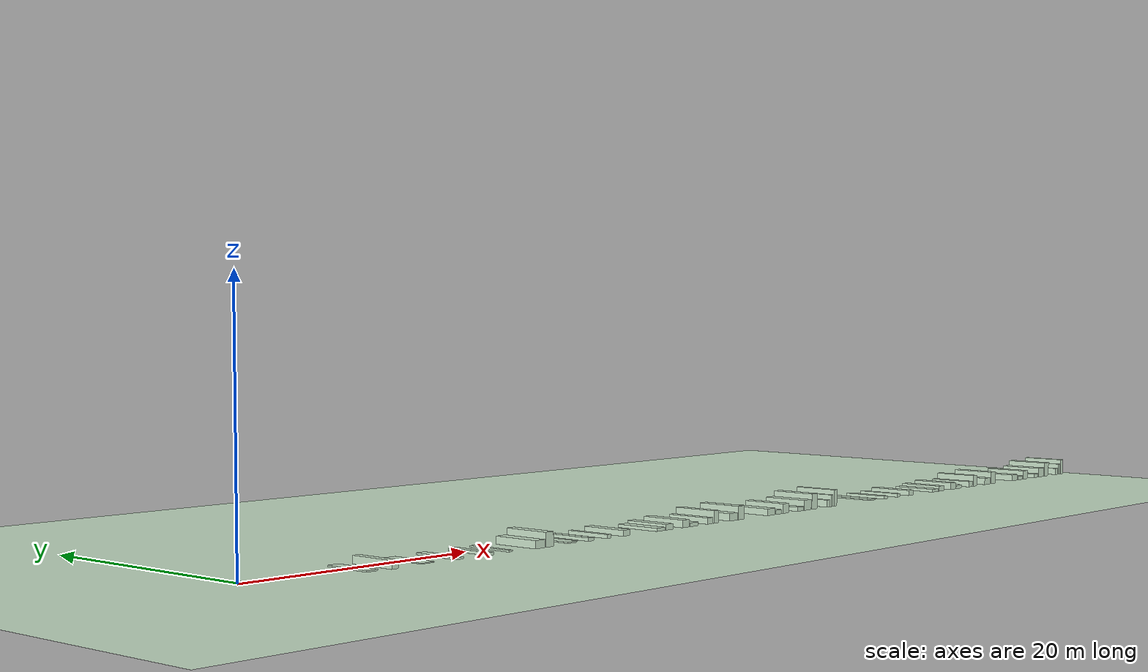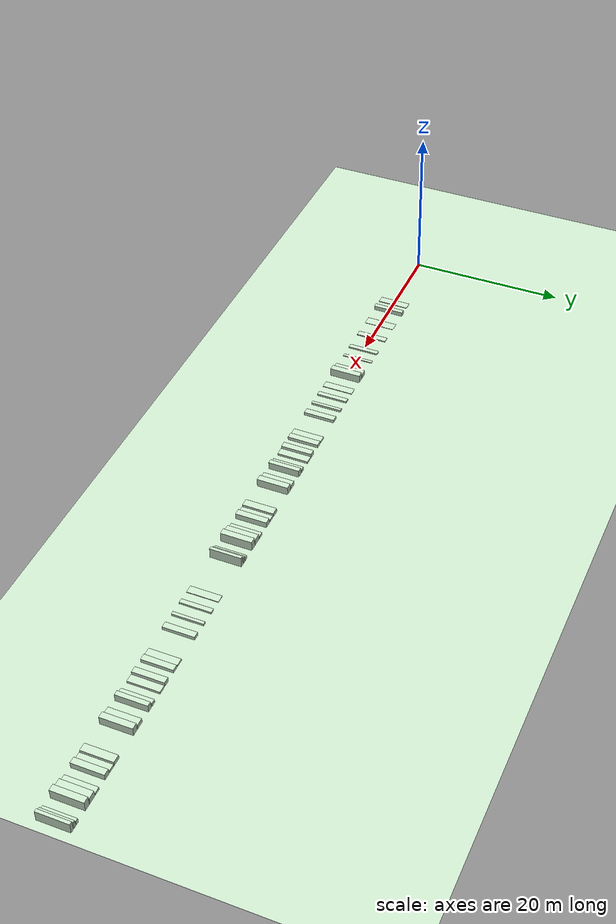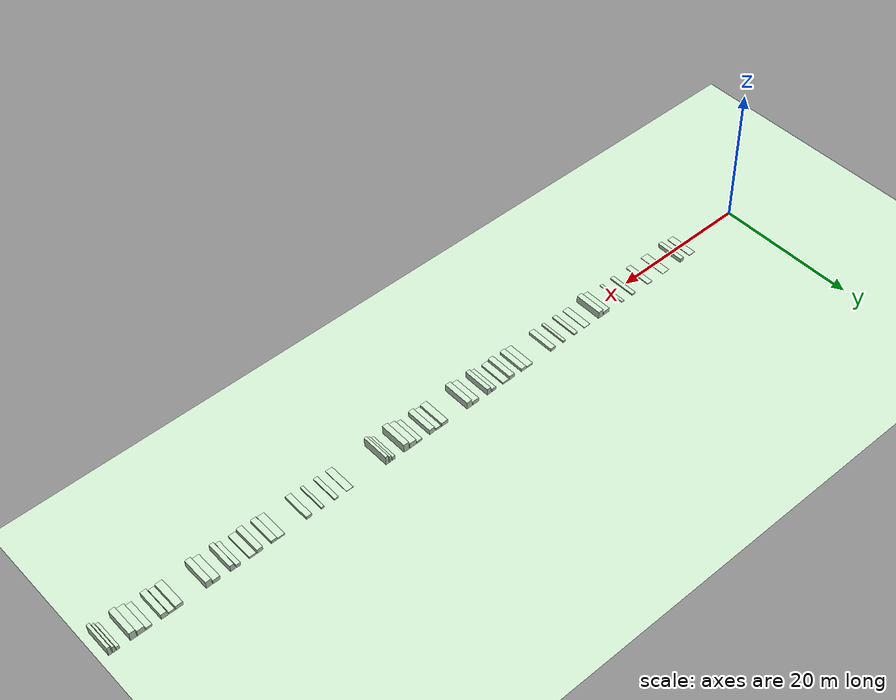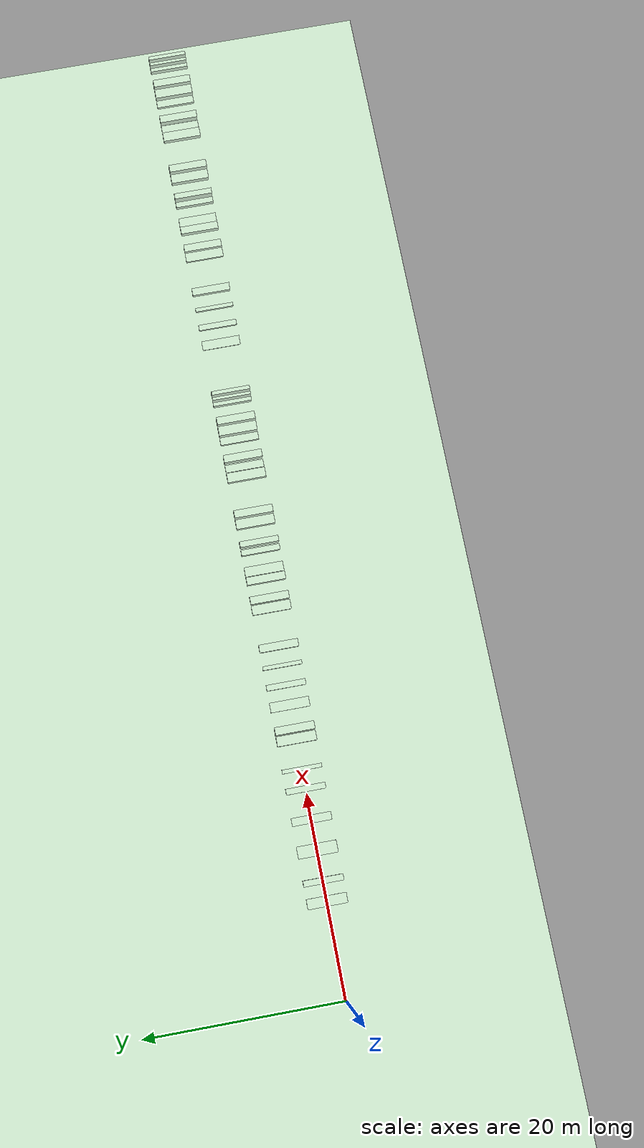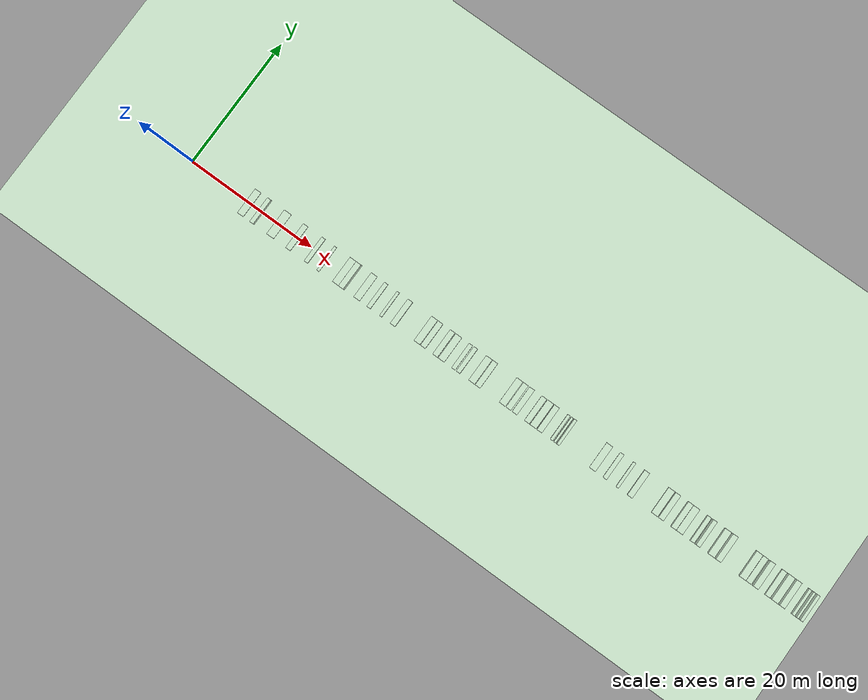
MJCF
<!--
Walker2D model for `Walker2d-v5`, based on openai/gym/Walker2d
modified by @kallinteris-Andreas
  - To not require `coordinate="global"`
  - Set feet friction to 1.9
-->
<mujoco model="walker2d">
  <compiler angle="degree" inertiafromgeom="true"/>
  <default>
    <joint armature="0.01" damping=".1" limited="true"/>
    <geom conaffinity="0" condim="3" contype="1" density="1000" friction=".7 .1 .1" rgba="0.8 0.6 .4 1"/>
  </default>
  <option integrator="RK4" timestep="0.002"/>
  <worldbody>
    <light cutoff="100" diffuse="1 1 1" dir="-0 0 -1.3" directional="true" exponent="1" pos="0 0 1.3" specular=".1 .1 .1"/>

    <geom conaffinity="1" condim="3" name="floor" pos="0 0 0" rgba="0.8 0.9 0.8 1" size="102 40 40" type="plane" material="MatPlane"/>
    <!-- Terrain Editor bumps: x-sorted, non-overlapping, touching allowed.
         size = (forward half-length, lateral half-width, exposed height); pos z=0. -->
    <geom conaffinity="1" condim="3" name="bump1" pos="9.550 0 0" size="0.500 2 0.050" type="box" friction="0.9 0.1 0.1" rgba="0.8 0.9 0.8 1"/>
    <geom conaffinity="1" condim="3" name="bump2" pos="11.550 0 0" size="0.300 2 0.500" type="box" friction="0.9 0.1 0.1" rgba="0.8 0.9 0.8 1"/>
    <geom conaffinity="1" condim="3" name="bump3" pos="14.550 0 0" size="0.600 2 0.030" type="box" friction="0.9 0.1 0.1" rgba="0.8 0.9 0.8 1"/>
    <geom conaffinity="1" condim="3" name="bump4" pos="17.550 0 0" size="0.400 2 0.070" type="box" friction="0.9 0.1 0.1" rgba="0.8 0.9 0.8 1"/>
    <geom conaffinity="1" condim="3" name="bump5" pos="20.550 0 0" size="0.300 2 0.120" type="box" friction="0.9 0.1 0.1" rgba="0.8 0.9 0.8 1"/>
    <geom conaffinity="1" condim="3" name="bump6" pos="22.550 0 0" size="0.200 2 0.060" type="box" friction="0.9 0.1 0.1" rgba="0.8 0.9 0.8 1"/>
    <geom conaffinity="1" condim="3" name="bump7" pos="25.550 0 0" size="0.500 2 0.500" type="box" friction="0.9 0.1 0.1" rgba="0.8 0.9 0.8 1"/>
    <geom conaffinity="1" condim="3" name="bump8" pos="26.550 0 0" size="0.400 2 1.000" type="box" friction="0.9 0.1 0.1" rgba="0.8 0.9 0.8 1"/>
    <geom conaffinity="1" condim="3" name="bump9" pos="29.000 0 0" size="0.500 2 0.050" type="box" friction="0.9 0.1 0.1" rgba="0.8 0.9 0.8 1"/>
    <geom conaffinity="1" condim="3" name="bump10" pos="31.000 0 0" size="0.300 2 0.150" type="box" friction="0.9 0.1 0.1" rgba="0.8 0.9 0.8 1"/>
    <geom conaffinity="1" condim="3" name="bump11" pos="33.000 0 0" size="0.200 2 0.200" type="box" friction="0.9 0.1 0.1" rgba="0.8 0.9 0.8 1"/>
    <geom conaffinity="1" condim="3" name="bump12" pos="35.000 0 0" size="0.400 2 0.350" type="box" friction="0.9 0.1 0.1" rgba="0.8 0.9 0.8 1"/>
    <geom conaffinity="1" condim="3" name="bump13" pos="39.000 0 0" size="0.500 2 0.150" type="box" friction="0.9 0.1 0.1" rgba="0.8 0.9 0.8 1"/>
    <geom conaffinity="1" condim="3" name="bump14" pos="40.000 0 0" size="0.400 2 0.350" type="box" friction="0.9 0.1 0.1" rgba="0.8 0.9 0.8 1"/>
    <geom conaffinity="1" condim="3" name="bump15" pos="42.000 0 0" size="0.400 2 0.500" type="box" friction="0.9 0.1 0.1" rgba="0.8 0.9 0.8 1"/>
    <geom conaffinity="1" condim="3" name="bump16" pos="43.000 0 0" size="0.500 2 0.200" type="box" friction="0.9 0.1 0.1" rgba="0.8 0.9 0.8 1"/>
    <geom conaffinity="1" condim="3" name="bump17" pos="45.000 0 0" size="0.300 2 0.400" type="box" friction="0.9 0.1 0.1" rgba="0.8 0.9 0.8 1"/>
    <geom conaffinity="1" condim="3" name="bump18" pos="45.800 0 0" size="0.300 2 0.900" type="box" friction="0.9 0.1 0.1" rgba="0.8 0.9 0.8 1"/>
    <geom conaffinity="1" condim="3" name="bump19" pos="48.000 0 0" size="0.500 2 0.500" type="box" friction="0.9 0.1 0.1" rgba="0.8 0.9 0.8 1"/>
    <geom conaffinity="1" condim="3" name="bump20" pos="49.000 0 0" size="0.400 2 1.000" type="box" friction="0.9 0.1 0.1" rgba="0.8 0.9 0.8 1"/>
    <geom conaffinity="1" condim="3" name="bump21" pos="53.000 0 0" size="0.500 2 0.450" type="box" friction="0.9 0.1 0.1" rgba="0.8 0.9 0.8 1"/>
    <geom conaffinity="1" condim="3" name="bump22" pos="54.000 0 0" size="0.400 2 0.250" type="box" friction="0.9 0.1 0.1" rgba="0.8 0.9 0.8 1"/>
    <geom conaffinity="1" condim="3" name="bump23" pos="55.000 0 0" size="0.400 2 0.700" type="box" friction="0.9 0.1 0.1" rgba="0.8 0.9 0.8 1"/>
    <geom conaffinity="1" condim="3" name="bump24" pos="57.000 0 0" size="0.400 2 0.250" type="box" friction="0.9 0.1 0.1" rgba="0.8 0.9 0.8 1"/>
    <geom conaffinity="1" condim="3" name="bump25" pos="58.000 0 0" size="0.500 2 0.750" type="box" friction="0.9 0.1 0.1" rgba="0.8 0.9 0.8 1"/>
    <geom conaffinity="1" condim="3" name="bump26" pos="59.000 0 0" size="0.400 2 1.200" type="box" friction="0.9 0.1 0.1" rgba="0.8 0.9 0.8 1"/>
    <geom conaffinity="1" condim="3" name="bump27" pos="61.000 0 0" size="0.200 2 0.500" type="box" friction="0.9 0.1 0.1" rgba="0.8 0.9 0.8 1"/>
    <geom conaffinity="1" condim="3" name="bump28" pos="61.500 0 0" size="0.150 2 0.900" type="box" friction="0.9 0.1 0.1" rgba="0.8 0.9 0.8 1"/>
    <geom conaffinity="1" condim="3" name="bump29" pos="62.000 0 0" size="0.200 2 1.300" type="box" friction="0.9 0.1 0.1" rgba="0.8 0.9 0.8 1"/>
    <geom conaffinity="1" condim="3" name="bump30" pos="67.650 0 0" size="0.500 2 0.050" type="box" friction="0.9 0.1 0.1" rgba="0.8 0.9 0.8 1"/>
    <geom conaffinity="1" condim="3" name="bump31" pos="69.650 0 0" size="0.300 2 0.150" type="box" friction="0.9 0.1 0.1" rgba="0.8 0.9 0.8 1"/>
    <geom conaffinity="1" condim="3" name="bump32" pos="71.650 0 0" size="0.200 2 0.200" type="box" friction="0.9 0.1 0.1" rgba="0.8 0.9 0.8 1"/>
    <geom conaffinity="1" condim="3" name="bump33" pos="73.650 0 0" size="0.400 2 0.350" type="box" friction="0.9 0.1 0.1" rgba="0.8 0.9 0.8 1"/>
    <geom conaffinity="1" condim="3" name="bump34" pos="77.650 0 0" size="0.500 2 0.150" type="box" friction="0.9 0.1 0.1" rgba="0.8 0.9 0.8 1"/>
    <geom conaffinity="1" condim="3" name="bump35" pos="78.650 0 0" size="0.400 2 0.350" type="box" friction="0.9 0.1 0.1" rgba="0.8 0.9 0.8 1"/>
    <geom conaffinity="1" condim="3" name="bump36" pos="80.650 0 0" size="0.400 2 0.500" type="box" friction="0.9 0.1 0.1" rgba="0.8 0.9 0.8 1"/>
    <geom conaffinity="1" condim="3" name="bump37" pos="81.650 0 0" size="0.500 2 0.200" type="box" friction="0.9 0.1 0.1" rgba="0.8 0.9 0.8 1"/>
    <geom conaffinity="1" condim="3" name="bump38" pos="83.650 0 0" size="0.300 2 0.400" type="box" friction="0.9 0.1 0.1" rgba="0.8 0.9 0.8 1"/>
    <geom conaffinity="1" condim="3" name="bump39" pos="84.450 0 0" size="0.300 2 0.900" type="box" friction="0.9 0.1 0.1" rgba="0.8 0.9 0.8 1"/>
    <geom conaffinity="1" condim="3" name="bump40" pos="86.650 0 0" size="0.500 2 0.500" type="box" friction="0.9 0.1 0.1" rgba="0.8 0.9 0.8 1"/>
    <geom conaffinity="1" condim="3" name="bump41" pos="87.650 0 0" size="0.400 2 1.000" type="box" friction="0.9 0.1 0.1" rgba="0.8 0.9 0.8 1"/>
    <geom conaffinity="1" condim="3" name="bump42" pos="91.650 0 0" size="0.500 2 0.450" type="box" friction="0.9 0.1 0.1" rgba="0.8 0.9 0.8 1"/>
    <geom conaffinity="1" condim="3" name="bump43" pos="92.650 0 0" size="0.400 2 0.250" type="box" friction="0.9 0.1 0.1" rgba="0.8 0.9 0.8 1"/>
    <geom conaffinity="1" condim="3" name="bump44" pos="93.650 0 0" size="0.400 2 0.700" type="box" friction="0.9 0.1 0.1" rgba="0.8 0.9 0.8 1"/>
    <geom conaffinity="1" condim="3" name="bump45" pos="95.650 0 0" size="0.400 2 0.250" type="box" friction="0.9 0.1 0.1" rgba="0.8 0.9 0.8 1"/>
    <geom conaffinity="1" condim="3" name="bump46" pos="96.650 0 0" size="0.500 2 0.750" type="box" friction="0.9 0.1 0.1" rgba="0.8 0.9 0.8 1"/>
    <geom conaffinity="1" condim="3" name="bump47" pos="97.650 0 0" size="0.400 2 1.200" type="box" friction="0.9 0.1 0.1" rgba="0.8 0.9 0.8 1"/>
    <geom conaffinity="1" condim="3" name="bump48" pos="99.650 0 0" size="0.200 2 0.500" type="box" friction="0.9 0.1 0.1" rgba="0.8 0.9 0.8 1"/>
    <geom conaffinity="1" condim="3" name="bump49" pos="100.150 0 0" size="0.150 2 0.900" type="box" friction="0.9 0.1 0.1" rgba="0.8 0.9 0.8 1"/>
    <geom conaffinity="1" condim="3" name="bump50" pos="100.650 0 0" size="0.200 2 1.300" type="box" friction="0.9 0.1 0.1" rgba="0.8 0.9 0.8 1"/>
<body name="torso" pos="0 0 1.25">
      <camera name="track" mode="trackcom" pos="0 -3 -0.25" xyaxes="1 0 0 0 0 1"/>
      <joint armature="0" axis="1 0 0" damping="0" limited="false" name="rootx" pos="0 0 -1.25" stiffness="0" type="slide"/>
      <joint armature="0" axis="0 0 1" damping="0" limited="false" name="rootz" pos="0 0 -1.25" ref="1.25" stiffness="0" type="slide"/>
      <joint armature="0" axis="0 1 0" damping="0" limited="false" name="rooty" pos="0 0 0" stiffness="0" type="hinge"/>
      <geom friction="0.9" name="torso_geom" size="0.050000000000000003 0.19999999999999996" type="capsule"/>
      <body name="thigh" pos="0 0 -0.19999999999999996">
        <joint axis="0 -1 0" name="thigh_joint" pos="0 0 0" range="-150 0" type="hinge"/>
        <geom friction="0.9" pos="0 0 -0.22500000000000009" name="thigh_geom" size="0.050000000000000003 0.22500000000000003" type="capsule"/>
        <body name="leg" pos="0 0 -0.70000000000000007">
          <joint axis="0 -1 0" name="leg_joint" pos="0 0 0.25" range="-150 0" type="hinge"/>
          <geom friction="0.9" name="leg_geom" size="0.040000000000000001 0.25" type="capsule"/>
          <body name="foot" pos="0.20000000000000001 0 -0.34999999999999998">
            <joint axis="0 -1 0" name="foot_joint" pos="-0.20000000000000001 0 0.10000000000000001" range="-45 45" type="hinge"/>
            <geom friction="1.9" pos="-0.10000000000000001 0 0.10000000000000001" quat="0.70710678118654757 0 -0.70710678118654746 0" name="foot_geom" size="0.059999999999999998 0.10000000000000001" type="capsule"/>
          </body>
        </body>
      </body>
      <!-- copied and then replace thigh->thigh_left, leg->leg_left, foot->foot_right -->
      <body name="thigh_left" pos="0 0 -0.19999999999999996">
        <joint axis="0 -1 0" name="thigh_left_joint" pos="0 0 0" range="-150 0" type="hinge"/>
        <geom friction="0.9" name="thigh_left_geom" rgba=".7 .3 .6 1" size="0.050000000000000003 0.22500000000000003" pos="0 0 -0.22500000000000009" type="capsule"/>
        <body name="leg_left" pos="0 0 -0.70000000000000007">
          <joint axis="0 -1 0" name="leg_left_joint" pos="0 0 0.25" range="-150 0" type="hinge"/>
          <geom friction="0.9" name="leg_left_geom" rgba=".7 .3 .6 1" size="0.040000000000000001 0.25" type="capsule"/>
          <body name="foot_left" pos="0.20000000000000001 0 -0.34999999999999998">
            <joint axis="0 -1 0" name="foot_left_joint" pos="-0.20000000000000001 0 0.10000000000000001" range="-45 45" type="hinge"/>
            <geom friction="1.9" name="foot_left_geom" rgba=".7 .3 .6 1" size="0.059999999999999998 0.10000000000000001" pos="-0.10000000000000001 0 0.10000000000000001" type="capsule" quat="0.70710678118654757 0 -0.70710678118654746 0"/>
          </body>
        </body>
      </body>
    </body>
  </worldbody>
  <actuator>
    <motor ctrllimited="true" ctrlrange="-1.0 1.0" gear="100" joint="thigh_joint"/>
    <motor ctrllimited="true" ctrlrange="-1.0 1.0" gear="100" joint="leg_joint"/>
    <motor ctrllimited="true" ctrlrange="-1.0 1.0" gear="100" joint="foot_joint"/>
    <motor ctrllimited="true" ctrlrange="-1.0 1.0" gear="100" joint="thigh_left_joint"/>
    <motor ctrllimited="true" ctrlrange="-1.0 1.0" gear="100" joint="leg_left_joint"/>
    <motor ctrllimited="true" ctrlrange="-1.0 1.0" gear="100" joint="foot_left_joint"/>
  </actuator>
    <asset>
        <texture type="skybox" builtin="gradient" rgb1=".4 .5 .6" rgb2="0 0 0"
            width="100" height="100"/>
        <texture builtin="flat" height="1278" mark="cross" markrgb="1 1 1" name="texgeom" random="0.01" rgb1="0.8 0.6 0.4" rgb2="0.8 0.6 0.4" type="cube" width="127"/>
        <texture builtin="checker" height="100" name="texplane" rgb1="0.3 0.3 0.3" rgb2="0.8 0.8 0.8" type="2d" width="100"/>
        <material name="MatPlane" reflectance="0.5" shininess="1" specular="1" texrepeat="153 60" texture="texplane"/>
        <material name="geom" texture="texgeom" texuniform="true"/>
    </asset>
</mujoco>
